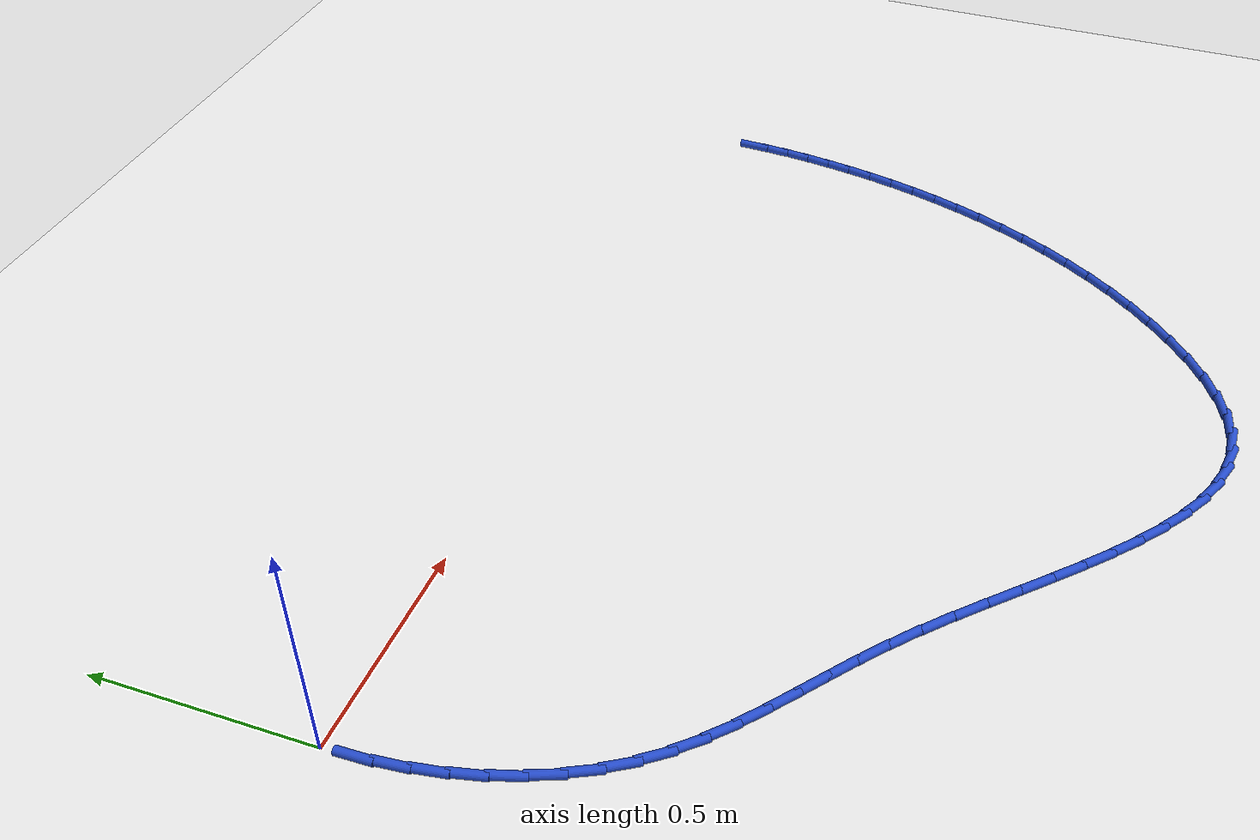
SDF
<sdf version="1.6">
 <world name="default">
  <model name="ground_plane">
   <static>1</static>
   <link name="link">
    <collision name="collision">
     <geometry><plane><normal>0 0 1</normal><size>100 100</size></plane></geometry>
     <surface><friction><ode><mu>100</mu><mu2>50</mu2></ode></friction></surface>
    </collision>
    <visual name="visual">
     <cast_shadows>0</cast_shadows>
     <geometry><plane><normal>0 0 1</normal><size>100 100</size></plane></geometry>
     <material>
      <script><uri>file://media/materials/scripts/gazebo.material</uri><name>Gazebo/WhiteGlow</name></script>
     </material>
    </visual>
   </link>
  </model>
  <model name="line">
   <link name="link_54">
    <pose>2.204202218542603 -0.1015029288863931 0.01 0 1.57 1.5245200863204331</pose>
    <collision name="collision">
     <geometry><cylinder><radius>0.01</radius><length>0.08</length></cylinder></geometry>
    </collision>
    <visual name="visual">
     <material>
      <script><name>Gazebo/Blue</name><uri>file://media/materials/scripts/gazebo.material</uri></script>
     </material>
     <geometry><cylinder><radius>0.01</radius><length>0.08</length></cylinder></geometry>
    </visual>
   </link>
   <link name="link_55">
    <pose>2.201416071765419 -0.16166679762523006 0.01 0 1.57 1.4882961597538764</pose>
    <collision name="collision">
     <geometry><cylinder><radius>0.01</radius><length>0.08</length></cylinder></geometry>
    </collision>
    <visual name="visual">
     <material>
      <script><name>Gazebo/Blue</name><uri>file://media/materials/scripts/gazebo.material</uri></script>
     </material>
     <geometry><cylinder><radius>0.01</radius><length>0.08</length></cylinder></geometry>
    </visual>
   </link>
   <link name="link_56">
    <pose>2.1964350447480823 -0.22190571972335751 0.01 0 1.57 1.4546118081697592</pose>
    <collision name="collision">
     <geometry><cylinder><radius>0.01</radius><length>0.08</length></cylinder></geometry>
    </collision>
    <visual name="visual">
     <material>
      <script><name>Gazebo/Blue</name><uri>file://media/materials/scripts/gazebo.material</uri></script>
     </material>
     <geometry><cylinder><radius>0.01</radius><length>0.08</length></cylinder></geometry>
    </visual>
   </link>
   <link name="link_57">
    <pose>2.1893442652550856 -0.2826611891721631 0.01 0 1.57 1.4240387400465828</pose>
    <collision name="collision">
     <geometry><cylinder><radius>0.01</radius><length>0.08</length></cylinder></geometry>
    </collision>
    <visual name="visual">
     <material>
      <script><name>Gazebo/Blue</name><uri>file://media/materials/scripts/gazebo.material</uri></script>
     </material>
     <geometry><cylinder><radius>0.01</radius><length>0.08</length></cylinder></geometry>
    </visual>
   </link>
   <link name="link_58">
    <pose>2.180224188271324 -0.34435821994236826 0.01 0 1.57 1.39467918673193</pose>
    <collision name="collision">
     <geometry><cylinder><radius>0.01</radius><length>0.08</length></cylinder></geometry>
    </collision>
    <visual name="visual">
     <material>
      <script><name>Gazebo/Blue</name><uri>file://media/materials/scripts/gazebo.material</uri></script>
     </material>
     <geometry><cylinder><radius>0.01</radius><length>0.08</length></cylinder></geometry>
    </visual>
   </link>
   <link name="link_59">
    <pose>2.169060691588052 -0.4070882699116727 0.01 0 1.57 1.3643373103118526</pose>
    <collision name="collision">
     <geometry><cylinder><radius>0.01</radius><length>0.08</length></cylinder></geometry>
    </collision>
    <visual name="visual">
     <material>
      <script><name>Gazebo/Blue</name><uri>file://media/materials/scripts/gazebo.material</uri></script>
     </material>
     <geometry><cylinder><radius>0.01</radius><length>0.08</length></cylinder></geometry>
    </visual>
   </link>
   <link name="link_60">
    <pose>2.1557517300213758 -0.4706327090502165 0.01 0 1.57 1.3327611698829727</pose>
    <collision name="collision">
     <geometry><cylinder><radius>0.01</radius><length>0.08</length></cylinder></geometry>
    </collision>
    <visual name="visual">
     <material>
      <script><name>Gazebo/Blue</name><uri>file://media/materials/scripts/gazebo.material</uri></script>
     </material>
     <geometry><cylinder><radius>0.01</radius><length>0.08</length></cylinder></geometry>
    </visual>
   </link>
   <link name="link_61">
    <pose>2.140191918672391 -0.5347611287772409 0.01 0 1.57 1.2997863934842333</pose>
    <collision name="collision">
     <geometry><cylinder><radius>0.01</radius><length>0.08</length></cylinder></geometry>
    </collision>
    <visual name="visual">
     <material>
      <script><name>Gazebo/Blue</name><uri>file://media/materials/scripts/gazebo.material</uri></script>
     </material>
     <geometry><cylinder><radius>0.01</radius><length>0.08</length></cylinder></geometry>
    </visual>
   </link>
   <link name="link_62">
    <pose>2.1222758726421964 -0.5992431205119841 0.01 0 1.57 1.2652547620427408</pose>
    <collision name="collision">
     <geometry><cylinder><radius>0.01</radius><length>0.08</length></cylinder></geometry>
    </collision>
    <visual name="visual">
     <material>
      <script><name>Gazebo/Blue</name><uri>file://media/materials/scripts/gazebo.material</uri></script>
     </material>
     <geometry><cylinder><radius>0.01</radius><length>0.08</length></cylinder></geometry>
    </visual>
   </link>
   <link name="link_63">
    <pose>2.1018982070318892 -0.6638482756736874 0.01 0 1.57 1.229014575112934</pose>
    <collision name="collision">
     <geometry><cylinder><radius>0.01</radius><length>0.08</length></cylinder></geometry>
    </collision>
    <visual name="visual">
     <material>
      <script><name>Gazebo/Blue</name><uri>file://media/materials/scripts/gazebo.material</uri></script>
     </material>
     <geometry><cylinder><radius>0.01</radius><length>0.08</length></cylinder></geometry>
    </visual>
   </link>
   <link name="link_64">
    <pose>2.0789535369425667 -0.7283461856815888 0.01 0 1.57 1.1909221883860293</pose>
    <collision name="collision">
     <geometry><cylinder><radius>0.01</radius><length>0.08</length></cylinder></geometry>
    </collision>
    <visual name="visual">
     <material>
      <script><name>Gazebo/Blue</name><uri>file://media/materials/scripts/gazebo.material</uri></script>
     </material>
     <geometry><cylinder><radius>0.01</radius><length>0.08</length></cylinder></geometry>
    </visual>
   </link>
   <link name="link_65">
    <pose>2.053336477475327 -0.7925064419549288 0.01 0 1.57 1.1508447614641357</pose>
    <collision name="collision">
     <geometry><cylinder><radius>0.01</radius><length>0.08</length></cylinder></geometry>
    </collision>
    <visual name="visual">
     <material>
      <script><name>Gazebo/Blue</name><uri>file://media/materials/scripts/gazebo.material</uri></script>
     </material>
     <geometry><cylinder><radius>0.01</radius><length>0.08</length></cylinder></geometry>
    </visual>
   </link>
   <link name="link_66">
    <pose>2.0249416437312675 -0.8560986359129479 0.01 0 1.57 1.1086642653984888</pose>
    <collision name="collision">
     <geometry><cylinder><radius>0.01</radius><length>0.08</length></cylinder></geometry>
    </collision>
    <visual name="visual">
     <material>
      <script><name>Gazebo/Blue</name><uri>file://media/materials/scripts/gazebo.material</uri></script>
     </material>
     <geometry><cylinder><radius>0.01</radius><length>0.08</length></cylinder></geometry>
    </visual>
   </link>
   <link name="link_67">
    <pose>1.9936636508114862 -0.9188923589748843 0.01 0 1.57 1.0642827720806844</pose>
    <collision name="collision">
     <geometry><cylinder><radius>0.01</radius><length>0.08</length></cylinder></geometry>
    </collision>
    <visual name="visual">
     <material>
      <script><name>Gazebo/Blue</name><uri>file://media/materials/scripts/gazebo.material</uri></script>
     </material>
     <geometry><cylinder><radius>0.01</radius><length>0.08</length></cylinder></geometry>
    </visual>
   </link>
   <link name="link_68">
    <pose>1.9593971138170798 -0.9806572025599788 0.01 0 1.57 1.017628973255625</pose>
    <collision name="collision">
     <geometry><cylinder><radius>0.01</radius><length>0.08</length></cylinder></geometry>
    </collision>
    <visual name="visual">
     <material>
      <script><name>Gazebo/Blue</name><uri>file://media/materials/scripts/gazebo.material</uri></script>
     </material>
     <geometry><cylinder><radius>0.01</radius><length>0.08</length></cylinder></geometry>
    </visual>
   </link>
   <link name="link_69">
    <pose>1.922036647849147 -1.0411627580874698 0.01 0 1.57 0.9686657474595177</pose>
    <collision name="collision">
     <geometry><cylinder><radius>0.01</radius><length>0.08</length></cylinder></geometry>
    </collision>
    <visual name="visual">
     <material>
      <script><name>Gazebo/Blue</name><uri>file://media/materials/scripts/gazebo.material</uri></script>
     </material>
     <geometry><cylinder><radius>0.01</radius><length>0.08</length></cylinder></geometry>
    </visual>
   </link>
   <link name="link_70">
    <pose>1.8814768680087839 -1.1001786169765984 0.01 0 1.57 0.9173984055772927</pose>
    <collision name="collision">
     <geometry><cylinder><radius>0.01</radius><length>0.08</length></cylinder></geometry>
    </collision>
    <visual name="visual">
     <material>
      <script><name>Gazebo/Blue</name><uri>file://media/materials/scripts/gazebo.material</uri></script>
     </material>
     <geometry><cylinder><radius>0.01</radius><length>0.08</length></cylinder></geometry>
    </visual>
   </link>
   <link name="link_71">
    <pose>1.8376123893970902 -1.1574743706466029 0.01 0 1.57 0.8638830090687654</pose>
    <collision name="collision">
     <geometry><cylinder><radius>0.01</radius><length>0.08</length></cylinder></geometry>
    </collision>
    <visual name="visual">
     <material>
      <script><name>Gazebo/Blue</name><uri>file://media/materials/scripts/gazebo.material</uri></script>
     </material>
     <geometry><cylinder><radius>0.01</radius><length>0.08</length></cylinder></geometry>
    </visual>
   </link>
   <link name="link_72">
    <pose>1.7903378271151609 -1.2128196105167244 0.01 0 1.57 0.8081021828125332</pose>
    <collision name="collision">
     <geometry><cylinder><radius>0.01</radius><length>0.08</length></cylinder></geometry>
    </collision>
    <visual name="visual">
     <material>
      <script><name>Gazebo/Blue</name><uri>file://media/materials/scripts/gazebo.material</uri></script>
     </material>
     <geometry><cylinder><radius>0.01</radius><length>0.08</length></cylinder></geometry>
    </visual>
   </link>
   <link name="link_73">
    <pose>1.7395745896424704 -1.2659418717195032 0.01 0 1.57 0.747426755075647</pose>
    <collision name="collision">
     <geometry><cylinder><radius>0.01</radius><length>0.08</length></cylinder></geometry>
    </collision>
    <visual name="visual">
     <material>
      <script><name>Gazebo/Blue</name><uri>file://media/materials/scripts/gazebo.material</uri></script>
     </material>
     <geometry><cylinder><radius>0.01</radius><length>0.08</length></cylinder></geometry>
    </visual>
   </link>
   <link name="link_74">
    <pose>1.6856691102092431 -1.3159015483303955 0.01 0 1.57 0.6772759388248047</pose>
    <collision name="collision">
     <geometry><cylinder><radius>0.01</radius><length>0.08</length></cylinder></geometry>
    </collision>
    <visual name="visual">
     <material>
      <script><name>Gazebo/Blue</name><uri>file://media/materials/scripts/gazebo.material</uri></script>
     </material>
     <geometry><cylinder><radius>0.01</radius><length>0.08</length></cylinder></geometry>
    </visual>
   </link>
   <link name="link_75">
    <pose>1.6293077972650376 -1.361225391556285 0.01 0 1.57 0.5933713115214804</pose>
    <collision name="collision">
     <geometry><cylinder><radius>0.01</radius><length>0.08</length></cylinder></geometry>
    </collision>
    <visual name="visual">
     <material>
      <script><name>Gazebo/Blue</name><uri>file://media/materials/scripts/gazebo.material</uri></script>
     </material>
     <geometry><cylinder><radius>0.01</radius><length>0.08</length></cylinder></geometry>
    </visual>
   </link>
   <link name="link_76">
    <pose>1.5711865764700472 -1.4004252138929456 0.01 0 1.57 0.4902489451846718</pose>
    <collision name="collision">
     <geometry><cylinder><radius>0.01</radius><length>0.08</length></cylinder></geometry>
    </collision>
    <visual name="visual">
     <material>
      <script><name>Gazebo/Blue</name><uri>file://media/materials/scripts/gazebo.material</uri></script>
     </material>
     <geometry><cylinder><radius>0.01</radius><length>0.08</length></cylinder></geometry>
    </visual>
   </link>
   <link name="link_77">
    <pose>1.5120013734844695 -1.4320128278361495 0.01 0 1.57 0.36104680854228227</pose>
    <collision name="collision">
     <geometry><cylinder><radius>0.01</radius><length>0.08</length></cylinder></geometry>
    </collision>
    <visual name="visual">
     <material>
      <script><name>Gazebo/Blue</name><uri>file://media/materials/scripts/gazebo.material</uri></script>
     </material>
     <geometry><cylinder><radius>0.01</radius><length>0.08</length></cylinder></geometry>
    </visual>
   </link>
   <link name="link_78">
    <pose>1.4524481139684984 -1.4545000458816706 0.01 0 1.57 0.19849633417451476</pose>
    <collision name="collision">
     <geometry><cylinder><radius>0.01</radius><length>0.08</length></cylinder></geometry>
    </collision>
    <visual name="visual">
     <material>
      <script><name>Gazebo/Blue</name><uri>file://media/materials/scripts/gazebo.material</uri></script>
     </material>
     <geometry><cylinder><radius>0.01</radius><length>0.08</length></cylinder></geometry>
    </visual>
   </link>
   <link name="link_79">
    <pose>1.3932180318171004 -1.4664138841824836 0.01 0 1.57 0.013654601939946998</pose>
    <collision name="collision">
     <geometry><cylinder><radius>0.01</radius><length>0.08</length></cylinder></geometry>
    </collision>
    <visual name="visual">
     <material>
      <script><name>Gazebo/Blue</name><uri>file://media/materials/scripts/gazebo.material</uri></script>
     </material>
     <geometry><cylinder><radius>0.01</radius><length>0.08</length></cylinder></geometry>
    </visual>
   </link>
   <link name="link_80">
    <pose>1.334714932451946 -1.46721277036747 0.01 0 1.57 -0.16120732500387638</pose>
    <collision name="collision">
     <geometry><cylinder><radius>0.01</radius><length>0.08</length></cylinder></geometry>
    </collision>
    <visual name="visual">
     <material>
      <script><name>Gazebo/Blue</name><uri>file://media/materials/scripts/gazebo.material</uri></script>
     </material>
     <geometry><cylinder><radius>0.01</radius><length>0.08</length></cylinder></geometry>
    </visual>
   </link>
   <link name="link_81">
    <pose>1.2768936679028893 -1.457809964763518 0.01 0 1.57 -0.31371192259578196</pose>
    <collision name="collision">
     <geometry><cylinder><radius>0.01</radius><length>0.08</length></cylinder></geometry>
    </collision>
    <visual name="visual">
     <material>
      <script><name>Gazebo/Blue</name><uri>file://media/materials/scripts/gazebo.material</uri></script>
     </material>
     <geometry><cylinder><radius>0.01</radius><length>0.08</length></cylinder></geometry>
    </visual>
   </link>
   <link name="link_82">
    <pose>1.2196700657668478 -1.439245186305672 0.01 0 1.57 -0.43984143926835</pose>
    <collision name="collision">
     <geometry><cylinder><radius>0.01</radius><length>0.08</length></cylinder></geometry>
    </collision>
    <visual name="visual">
     <material>
      <script><name>Gazebo/Blue</name><uri>file://media/materials/scripts/gazebo.material</uri></script>
     </material>
     <geometry><cylinder><radius>0.01</radius><length>0.08</length></cylinder></geometry>
    </visual>
   </link>
   <link name="link_83">
    <pose>1.1629599536407387 -1.4125581539289735 0.01 0 1.57 -0.5404337491970654</pose>
    <collision name="collision">
     <geometry><cylinder><radius>0.01</radius><length>0.08</length></cylinder></geometry>
    </collision>
    <visual name="visual">
     <material>
      <script><name>Gazebo/Blue</name><uri>file://media/materials/scripts/gazebo.material</uri></script>
     </material>
     <geometry><cylinder><radius>0.01</radius><length>0.08</length></cylinder></geometry>
    </visual>
   </link>
   <link name="link_84">
    <pose>1.106679159121481 -1.378788586568466 0.01 0 1.57 -0.6185706127399585</pose>
    <collision name="collision">
     <geometry><cylinder><radius>0.01</radius><length>0.08</length></cylinder></geometry>
    </collision>
    <visual name="visual">
     <material>
      <script><name>Gazebo/Blue</name><uri>file://media/materials/scripts/gazebo.material</uri></script>
     </material>
     <geometry><cylinder><radius>0.01</radius><length>0.08</length></cylinder></geometry>
    </visual>
   </link>
   <link name="link_85">
    <pose>1.0507435098059923 -1.338976203159191 0.01 0 1.57 -0.6777535865075528</pose>
    <collision name="collision">
     <geometry><cylinder><radius>0.01</radius><length>0.08</length></cylinder></geometry>
    </collision>
    <visual name="visual">
     <material>
      <script><name>Gazebo/Blue</name><uri>file://media/materials/scripts/gazebo.material</uri></script>
     </material>
     <geometry><cylinder><radius>0.01</radius><length>0.08</length></cylinder></geometry>
    </visual>
   </link>
   <link name="link_86">
    <pose>0.9950688332911918 -1.2941607226361926 0.01 0 1.57 -0.7210526327793699</pose>
    <collision name="collision">
     <geometry><cylinder><radius>0.01</radius><length>0.08</length></cylinder></geometry>
    </collision>
    <visual name="visual">
     <material>
      <script><name>Gazebo/Blue</name><uri>file://media/materials/scripts/gazebo.material</uri></script>
     </material>
     <geometry><cylinder><radius>0.01</radius><length>0.08</length></cylinder></geometry>
    </visual>
   </link>
   <link name="link_87">
    <pose>0.939570957173996 -1.2453818639345118 0.01 0 1.57 -0.7508417877707791</pose>
    <collision name="collision">
     <geometry><cylinder><radius>0.01</radius><length>0.08</length></cylinder></geometry>
    </collision>
    <visual name="visual">
     <material>
      <script><name>Gazebo/Blue</name><uri>file://media/materials/scripts/gazebo.material</uri></script>
     </material>
     <geometry><cylinder><radius>0.01</radius><length>0.08</length></cylinder></geometry>
    </visual>
   </link>
   <link name="link_88">
    <pose>0.8841657090513247 -1.1936793459891928 0.01 0 1.57 -0.7687885671185477</pose>
    <collision name="collision">
     <geometry><cylinder><radius>0.01</radius><length>0.08</length></cylinder></geometry>
    </collision>
    <visual name="visual">
     <material>
      <script><name>Gazebo/Blue</name><uri>file://media/materials/scripts/gazebo.material</uri></script>
     </material>
     <geometry><cylinder><radius>0.01</radius><length>0.08</length></cylinder></geometry>
    </visual>
   </link>
   <link name="link_89">
    <pose>0.8287689165200943 -1.1400928877352765 0.01 0 1.57 -0.7759189251687402</pose>
    <collision name="collision">
     <geometry><cylinder><radius>0.01</radius><length>0.08</length></cylinder></geometry>
    </collision>
    <visual name="visual">
     <material>
      <script><name>Gazebo/Blue</name><uri>file://media/materials/scripts/gazebo.material</uri></script>
     </material>
     <geometry><cylinder><radius>0.01</radius><length>0.08</length></cylinder></geometry>
    </visual>
   </link>
   <link name="link_90">
    <pose>0.7732964071772246 -1.0856622081078071 0.01 0 1.57 -0.7726815715925845</pose>
    <collision name="collision">
     <geometry><cylinder><radius>0.01</radius><length>0.08</length></cylinder></geometry>
    </collision>
    <visual name="visual">
     <material>
      <script><name>Gazebo/Blue</name><uri>file://media/materials/scripts/gazebo.material</uri></script>
     </material>
     <geometry><cylinder><radius>0.01</radius><length>0.08</length></cylinder></geometry>
    </visual>
   </link>
   <link name="link_91">
    <pose>0.7176640086196321 -1.031427026041826 0.01 0 1.57 -0.7589844967486937</pose>
    <collision name="collision">
     <geometry><cylinder><radius>0.01</radius><length>0.08</length></cylinder></geometry>
    </collision>
    <visual name="visual">
     <material>
      <script><name>Gazebo/Blue</name><uri>file://media/materials/scripts/gazebo.material</uri></script>
     </material>
     <geometry><cylinder><radius>0.01</radius><length>0.08</length></cylinder></geometry>
    </visual>
   </link>
   <link name="link_92">
    <pose>0.6617875484442364 -0.978427060472377 0.01 0 1.57 -0.734197480666519</pose>
    <collision name="collision">
     <geometry><cylinder><radius>0.01</radius><length>0.08</length></cylinder></geometry>
    </collision>
    <visual name="visual">
     <material>
      <script><name>Gazebo/Blue</name><uri>file://media/materials/scripts/gazebo.material</uri></script>
     </material>
     <geometry><cylinder><radius>0.01</radius><length>0.08</length></cylinder></geometry>
    </visual>
   </link>
   <link name="link_93">
    <pose>0.6055828542479542 -0.9277020303345014 0.01 0 1.57 -0.6982655181718801</pose>
    <collision name="collision">
     <geometry><cylinder><radius>0.01</radius><length>0.08</length></cylinder></geometry>
    </collision>
    <visual name="visual">
     <material>
      <script><name>Gazebo/Blue</name><uri>file://media/materials/scripts/gazebo.material</uri></script>
     </material>
     <geometry><cylinder><radius>0.01</radius><length>0.08</length></cylinder></geometry>
    </visual>
   </link>
   <link name="link_94">
    <pose>0.5489949873828794 -0.8802062665645569 0.01 0 1.57 -0.6655244638628389</pose>
    <collision name="collision">
     <geometry><cylinder><radius>0.01</radius><length>0.08</length></cylinder></geometry>
    </collision>
    <visual name="visual">
     <material>
      <script><name>Gazebo/Blue</name><uri>file://media/materials/scripts/gazebo.material</uri></script>
     </material>
     <geometry><cylinder><radius>0.01</radius><length>0.08</length></cylinder></geometry>
    </visual>
   </link>
   <link name="link_95">
    <pose>0.49236107736557694 -0.8357489199565264 0.01 0 1.57 -0.6478382160591694</pose>
    <collision name="collision">
     <geometry><cylinder><radius>0.01</radius><length>0.08</length></cylinder></geometry>
    </collision>
    <visual name="visual">
     <material>
      <script><name>Gazebo/Blue</name><uri>file://media/materials/scripts/gazebo.material</uri></script>
     </material>
     <geometry><cylinder><radius>0.01</radius><length>0.08</length></cylinder></geometry>
    </visual>
   </link>
   <link name="link_96">
    <pose>0.4362984332733642 -0.793320773228779 0.01 0 1.57 -0.6466994908381033</pose>
    <collision name="collision">
     <geometry><cylinder><radius>0.01</radius><length>0.08</length></cylinder></geometry>
    </collision>
    <visual name="visual">
     <material>
      <script><name>Gazebo/Blue</name><uri>file://media/materials/scripts/gazebo.material</uri></script>
     </material>
     <geometry><cylinder><radius>0.01</radius><length>0.08</length></cylinder></geometry>
    </visual>
   </link>
   <link name="link_97">
    <pose>0.3814304252237684 -0.7518949055891176 0.01 0 1.57 -0.6632638047426729</pose>
    <collision name="collision">
     <geometry><cylinder><radius>0.01</radius><length>0.08</length></cylinder></geometry>
    </collision>
    <visual name="visual">
     <material>
      <script><name>Gazebo/Blue</name><uri>file://media/materials/scripts/gazebo.material</uri></script>
     </material>
     <geometry><cylinder><radius>0.01</radius><length>0.08</length></cylinder></geometry>
    </visual>
   </link>
   <link name="link_98">
    <pose>0.32838042333431655 -0.7104443962453446 0.01 0 1.57 -0.6985535376761224</pose>
    <collision name="collision">
     <geometry><cylinder><radius>0.01</radius><length>0.08</length></cylinder></geometry>
    </collision>
    <visual name="visual">
     <material>
      <script><name>Gazebo/Blue</name><uri>file://media/materials/scripts/gazebo.material</uri></script>
     </material>
     <geometry><cylinder><radius>0.01</radius><length>0.08</length></cylinder></geometry>
    </visual>
   </link>
   <link name="link_99">
    <pose>0.2777717977225374 -0.6679423244052646 0.01 0 1.57 -0.7532427129321947</pose>
    <collision name="collision">
     <geometry><cylinder><radius>0.01</radius><length>0.08</length></cylinder></geometry>
    </collision>
    <visual name="visual">
     <material>
      <script><name>Gazebo/Blue</name><uri>file://media/materials/scripts/gazebo.material</uri></script>
     </material>
     <geometry><cylinder><radius>0.01</radius><length>0.08</length></cylinder></geometry>
    </visual>
   </link>
   <link name="link_100">
    <pose>0.23022791850595717 -0.6233617692766792 0.01 0 1.57 -0.8272147650004863</pose>
    <collision name="collision">
     <geometry><cylinder><radius>0.01</radius><length>0.08</length></cylinder></geometry>
    </collision>
    <visual name="visual">
     <material>
      <script><name>Gazebo/Blue</name><uri>file://media/materials/scripts/gazebo.material</uri></script>
     </material>
     <geometry><cylinder><radius>0.01</radius><length>0.08</length></cylinder></geometry>
    </visual>
   </link>
   <link name="link_101">
    <pose>0.18637215580210495 -0.5756758100673933 0.01 0 1.57 -0.9188211091887345</pose>
    <collision name="collision">
     <geometry><cylinder><radius>0.01</radius><length>0.08</length></cylinder></geometry>
    </collision>
    <visual name="visual">
     <material>
      <script><name>Gazebo/Blue</name><uri>file://media/materials/scripts/gazebo.material</uri></script>
     </material>
     <geometry><cylinder><radius>0.01</radius><length>0.08</length></cylinder></geometry>
    </visual>
   </link>
   <link name="link_102">
    <pose>0.14682461803544988 -0.5238662978109193 0.01 0 1.57 -1.0169325264042022</pose>
    <collision name="collision">
     <geometry><cylinder><radius>0.01</radius><length>0.08</length></cylinder></geometry>
    </collision>
    <visual name="visual">
     <material>
      <script><name>Gazebo/Blue</name><uri>file://media/materials/scripts/gazebo.material</uri></script>
     </material>
     <geometry><cylinder><radius>0.01</radius><length>0.08</length></cylinder></geometry>
    </visual>
   </link>
   <link name="link_103">
    <pose>0.11197960641047354 -0.4675223575985266 0.01 0 1.57 -1.1075788223160703</pose>
    <collision name="collision">
     <geometry><cylinder><radius>0.01</radius><length>0.08</length></cylinder></geometry>
    </collision>
    <visual name="visual">
     <material>
      <script><name>Gazebo/Blue</name><uri>file://media/materials/scripts/gazebo.material</uri></script>
     </material>
     <geometry><cylinder><radius>0.01</radius><length>0.08</length></cylinder></geometry>
    </visual>
   </link>
   <link name="link_104">
    <pose>0.08186291624209383 -0.40722415487382324 0.01 0 1.57 -1.1907760275692594</pose>
    <collision name="collision">
     <geometry><cylinder><radius>0.01</radius><length>0.08</length></cylinder></geometry>
    </collision>
    <visual name="visual">
     <material>
      <script><name>Gazebo/Blue</name><uri>file://media/materials/scripts/gazebo.material</uri></script>
     </material>
     <geometry><cylinder><radius>0.01</radius><length>0.08</length></cylinder></geometry>
    </visual>
   </link>
   <link name="link_105">
    <pose>0.056466377426376585 -0.34364319989096964 0.01 0 1.57 -1.2679183950880357</pose>
    <collision name="collision">
     <geometry><cylinder><radius>0.01</radius><length>0.08</length></cylinder></geometry>
    </collision>
    <visual name="visual">
     <material>
      <script><name>Gazebo/Blue</name><uri>file://media/materials/scripts/gazebo.material</uri></script>
     </material>
     <geometry><cylinder><radius>0.01</radius><length>0.08</length></cylinder></geometry>
    </visual>
   </link>
   <link name="link_106">
    <pose>0.0357818198593863 -0.27745100290412344 0.01 0 1.57 -1.3404052583342116</pose>
    <collision name="collision">
     <geometry><cylinder><radius>0.01</radius><length>0.08</length></cylinder></geometry>
    </collision>
    <visual name="visual">
     <material>
      <script><name>Gazebo/Blue</name><uri>file://media/materials/scripts/gazebo.material</uri></script>
     </material>
     <geometry><cylinder><radius>0.01</radius><length>0.08</length></cylinder></geometry>
    </visual>
   </link>
   <link name="link_107">
    <pose>0.019801073437188576 -0.209319074167445 0.01 0 1.57 -1.4095979987699627</pose>
    <collision name="collision">
     <geometry><cylinder><radius>0.01</radius><length>0.08</length></cylinder></geometry>
    </collision>
    <visual name="visual">
     <material>
      <script><name>Gazebo/Blue</name><uri>file://media/materials/scripts/gazebo.material</uri></script>
     </material>
     <geometry><cylinder><radius>0.01</radius><length>0.08</length></cylinder></geometry>
    </visual>
   </link>
   <link name="link_108">
    <pose>0.008515968055848122 -0.13991892393509175 0.01 0 1.57 -1.4768178323636179</pose>
    <collision name="collision">
     <geometry><cylinder><radius>0.01</radius><length>0.08</length></cylinder></geometry>
    </collision>
    <visual name="visual">
     <material>
      <script><name>Gazebo/Blue</name><uri>file://media/materials/scripts/gazebo.material</uri></script>
     </material>
     <geometry><cylinder><radius>0.01</radius><length>0.08</length></cylinder></geometry>
    </visual>
   </link>
   <link name="link_109">
    <pose>0.0019183336114302514 -0.06992206246122432 0.01 0 1.57 -1.5433678950009633</pose>
    <collision name="collision">
     <geometry><cylinder><radius>0.01</radius><length>0.08</length></cylinder></geometry>
    </collision>
    <visual name="visual">
     <material>
      <script><name>Gazebo/Blue</name><uri>file://media/materials/scripts/gazebo.material</uri></script>
     </material>
     <geometry><cylinder><radius>0.01</radius><length>0.08</length></cylinder></geometry>
    </visual>
   </link>
  </model>
 </world>
</sdf>
